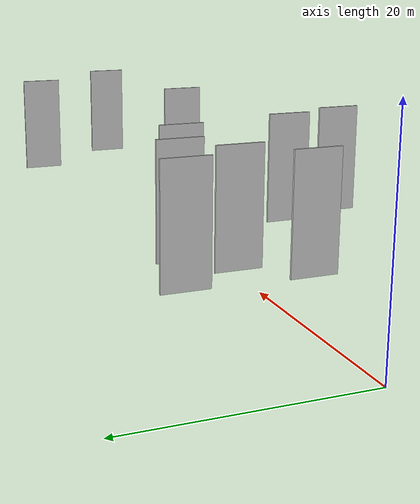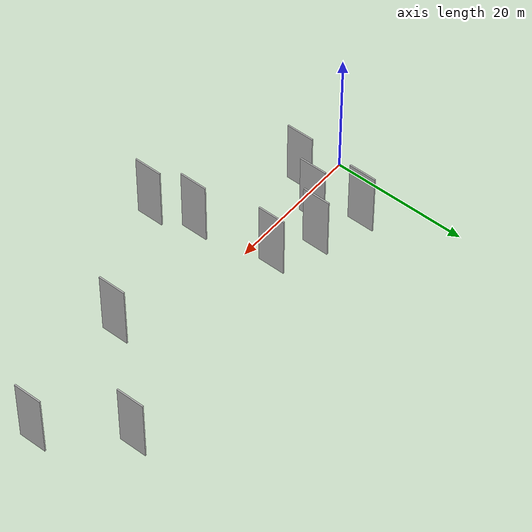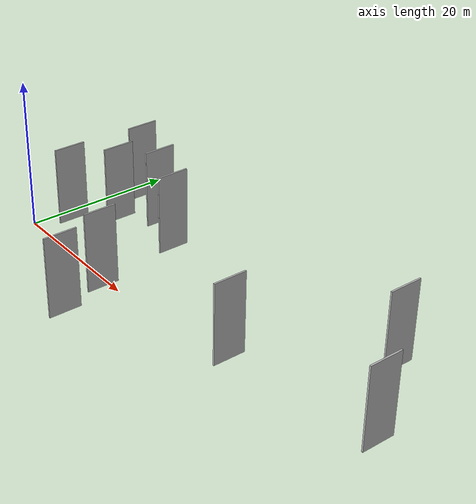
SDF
<sdf version="1.6">
 <world name="default">
  <scene>
   <sky><clouds><speed>12</speed></clouds></sky>
   <ambient>0.4 0.4 0.4 1</ambient>
   <background>0.7 0.7 0.7 1</background>
   <shadows>1</shadows>
  </scene>
  <gravity>0 0 -9.8066</gravity>
  <magnetic_field>6e-06 2.3e-05 -4.2e-05</magnetic_field>
  <physics default="0" name="default_physics" type="ode">
   <ode>
    <solver>
     <type>quick</type>
     <iters>10</iters>
     <sor>1.0</sor>
     <use_dynamic_moi_rescaling>0</use_dynamic_moi_rescaling>
    </solver>
    <constraints>
     <cfm>0</cfm>
     <erp>0.2</erp>
     <contact_max_correcting_vel>100</contact_max_correcting_vel>
     <contact_surface_layer>0.001</contact_surface_layer>
    </constraints>
   </ode>
   <max_step_size>0.004</max_step_size>
   <real_time_factor>1</real_time_factor>
   <real_time_update_rate>250</real_time_update_rate>
  </physics>
  <light name="sun" type="directional">
   <pose>0 0 10 0 0 0</pose>
   <diffuse>0.8 0.8 0.8 1</diffuse>
   <specular>0.2 0.2 0.2 1</specular>
   <attenuation>
    <range>1000</range>
    <constant>0.9</constant>
    <linear>0.01</linear>
    <quadratic>0.001</quadratic>
   </attenuation>
   <direction>-0.5 0.1 -0.9</direction>
  </light>
  <model name="grey_wall_1">
   <static>1</static>
   <pose>22.4228 6.4330 5.0 0.000000 0.000000 1.570796</pose>
   <link name="link">
    <pose>0 0 5.00 0 0 0</pose>
    <collision name="collision"><geometry><box><size>4.00 0.2 10.00</size></box></geometry></collision>
    <visual name="visual">
     <cast_shadows>0</cast_shadows>
     <geometry><box><size>4.00 0.2 10.00</size></box></geometry>
     <material>
      <script>
       <uri>model://HANNAS_wall/materials/scripts</uri>
       <uri>model://HANNAS_wall/materials/textures</uri>
       <name>vrc/HANNAS_wall</name>
      </script>
     </material>
    </visual>
   </link>
  </model>
  <model name="grey_wall_2">
   <static>1</static>
   <pose>16.4730 8.8108 5.0 0.000000 0.000000 1.570796</pose>
   <link name="link">
    <pose>0 0 5.00 0 0 0</pose>
    <collision name="collision"><geometry><box><size>4.00 0.2 10.00</size></box></geometry></collision>
    <visual name="visual">
     <cast_shadows>0</cast_shadows>
     <geometry><box><size>4.00 0.2 10.00</size></box></geometry>
     <material>
      <script>
       <uri>model://HANNAS_wall/materials/scripts</uri>
       <uri>model://HANNAS_wall/materials/textures</uri>
       <name>vrc/HANNAS_wall</name>
      </script>
     </material>
    </visual>
   </link>
  </model>
  <model name="grey_wall_3">
   <static>1</static>
   <pose>43.3535 -1.6044 5.0 0.000000 0.000000 1.570796</pose>
   <link name="link">
    <pose>0 0 5.00 0 0 0</pose>
    <collision name="collision"><geometry><box><size>4.00 0.2 10.00</size></box></geometry></collision>
    <visual name="visual">
     <cast_shadows>0</cast_shadows>
     <geometry><box><size>4.00 0.2 10.00</size></box></geometry>
     <material>
      <script>
       <uri>model://HANNAS_wall/materials/scripts</uri>
       <uri>model://HANNAS_wall/materials/textures</uri>
       <name>vrc/HANNAS_wall</name>
      </script>
     </material>
    </visual>
   </link>
  </model>
  <model name="grey_wall_4">
   <static>1</static>
   <pose>26.0831 -10.7180 5.0 0.000000 0.000000 1.570796</pose>
   <link name="link">
    <pose>0 0 5.00 0 0 0</pose>
    <collision name="collision"><geometry><box><size>4.00 0.2 10.00</size></box></geometry></collision>
    <visual name="visual">
     <cast_shadows>0</cast_shadows>
     <geometry><box><size>4.00 0.2 10.00</size></box></geometry>
     <material>
      <script>
       <uri>model://HANNAS_wall/materials/scripts</uri>
       <uri>model://HANNAS_wall/materials/textures</uri>
       <name>vrc/HANNAS_wall</name>
      </script>
     </material>
    </visual>
   </link>
  </model>
  <model name="grey_wall_5">
   <static>1</static>
   <pose>24.3478 -4.7204 5.0 0.000000 0.000000 1.570796</pose>
   <link name="link">
    <pose>0 0 5.00 0 0 0</pose>
    <collision name="collision"><geometry><box><size>4.00 0.2 10.00</size></box></geometry></collision>
    <visual name="visual">
     <cast_shadows>0</cast_shadows>
     <geometry><box><size>4.00 0.2 10.00</size></box></geometry>
     <material>
      <script>
       <uri>model://HANNAS_wall/materials/scripts</uri>
       <uri>model://HANNAS_wall/materials/textures</uri>
       <name>vrc/HANNAS_wall</name>
      </script>
     </material>
    </visual>
   </link>
  </model>
  <model name="grey_wall_6">
   <static>1</static>
   <pose>54.7117 11.2531 5.0 0.000000 0.000000 1.570796</pose>
   <link name="link">
    <pose>0 0 5.00 0 0 0</pose>
    <collision name="collision"><geometry><box><size>4.00 0.2 10.00</size></box></geometry></collision>
    <visual name="visual">
     <cast_shadows>0</cast_shadows>
     <geometry><box><size>4.00 0.2 10.00</size></box></geometry>
     <material>
      <script>
       <uri>model://HANNAS_wall/materials/scripts</uri>
       <uri>model://HANNAS_wall/materials/textures</uri>
       <name>vrc/HANNAS_wall</name>
      </script>
     </material>
    </visual>
   </link>
  </model>
  <model name="grey_wall_7">
   <static>1</static>
   <pose>9.7385 10.8967 5.0 0.000000 0.000000 1.570796</pose>
   <link name="link">
    <pose>0 0 5.00 0 0 0</pose>
    <collision name="collision"><geometry><box><size>4.00 0.2 10.00</size></box></geometry></collision>
    <visual name="visual">
     <cast_shadows>0</cast_shadows>
     <geometry><box><size>4.00 0.2 10.00</size></box></geometry>
     <material>
      <script>
       <uri>model://HANNAS_wall/materials/scripts</uri>
       <uri>model://HANNAS_wall/materials/textures</uri>
       <name>vrc/HANNAS_wall</name>
      </script>
     </material>
    </visual>
   </link>
  </model>
  <model name="grey_wall_8">
   <static>1</static>
   <pose>61.8348 1.4796 5.0 0.000000 0.000000 1.570796</pose>
   <link name="link">
    <pose>0 0 5.00 0 0 0</pose>
    <collision name="collision"><geometry><box><size>4.00 0.2 10.00</size></box></geometry></collision>
    <visual name="visual">
     <cast_shadows>0</cast_shadows>
     <geometry><box><size>4.00 0.2 10.00</size></box></geometry>
     <material>
      <script>
       <uri>model://HANNAS_wall/materials/scripts</uri>
       <uri>model://HANNAS_wall/materials/textures</uri>
       <name>vrc/HANNAS_wall</name>
      </script>
     </material>
    </visual>
   </link>
  </model>
  <model name="grey_wall_9">
   <static>1</static>
   <pose>12.7947 5.3564 5.0 0.000000 0.000000 1.570796</pose>
   <link name="link">
    <pose>0 0 5.00 0 0 0</pose>
    <collision name="collision"><geometry><box><size>4.00 0.2 10.00</size></box></geometry></collision>
    <visual name="visual">
     <cast_shadows>0</cast_shadows>
     <geometry><box><size>4.00 0.2 10.00</size></box></geometry>
     <material>
      <script>
       <uri>model://HANNAS_wall/materials/scripts</uri>
       <uri>model://HANNAS_wall/materials/textures</uri>
       <name>vrc/HANNAS_wall</name>
      </script>
     </material>
    </visual>
   </link>
  </model>
  <model name="grey_wall_10">
   <static>1</static>
   <pose>9.4162 0.5837 5.0 0.000000 0.000000 1.570796</pose>
   <link name="link">
    <pose>0 0 5.00 0 0 0</pose>
    <collision name="collision"><geometry><box><size>4.00 0.2 10.00</size></box></geometry></collision>
    <visual name="visual">
     <cast_shadows>0</cast_shadows>
     <geometry><box><size>4.00 0.2 10.00</size></box></geometry>
     <material>
      <script>
       <uri>model://HANNAS_wall/materials/scripts</uri>
       <uri>model://HANNAS_wall/materials/textures</uri>
       <name>vrc/HANNAS_wall</name>
      </script>
     </material>
    </visual>
   </link>
  </model>
 </world>
</sdf>
